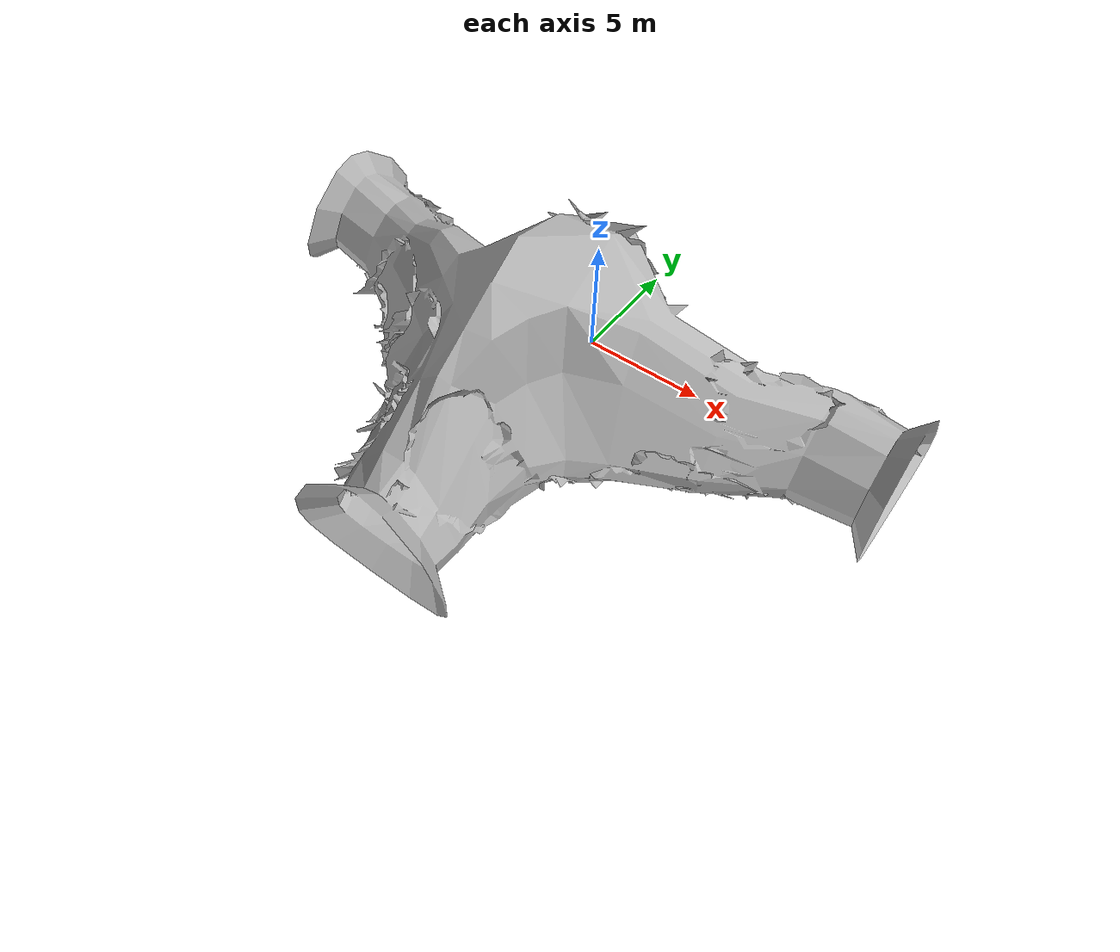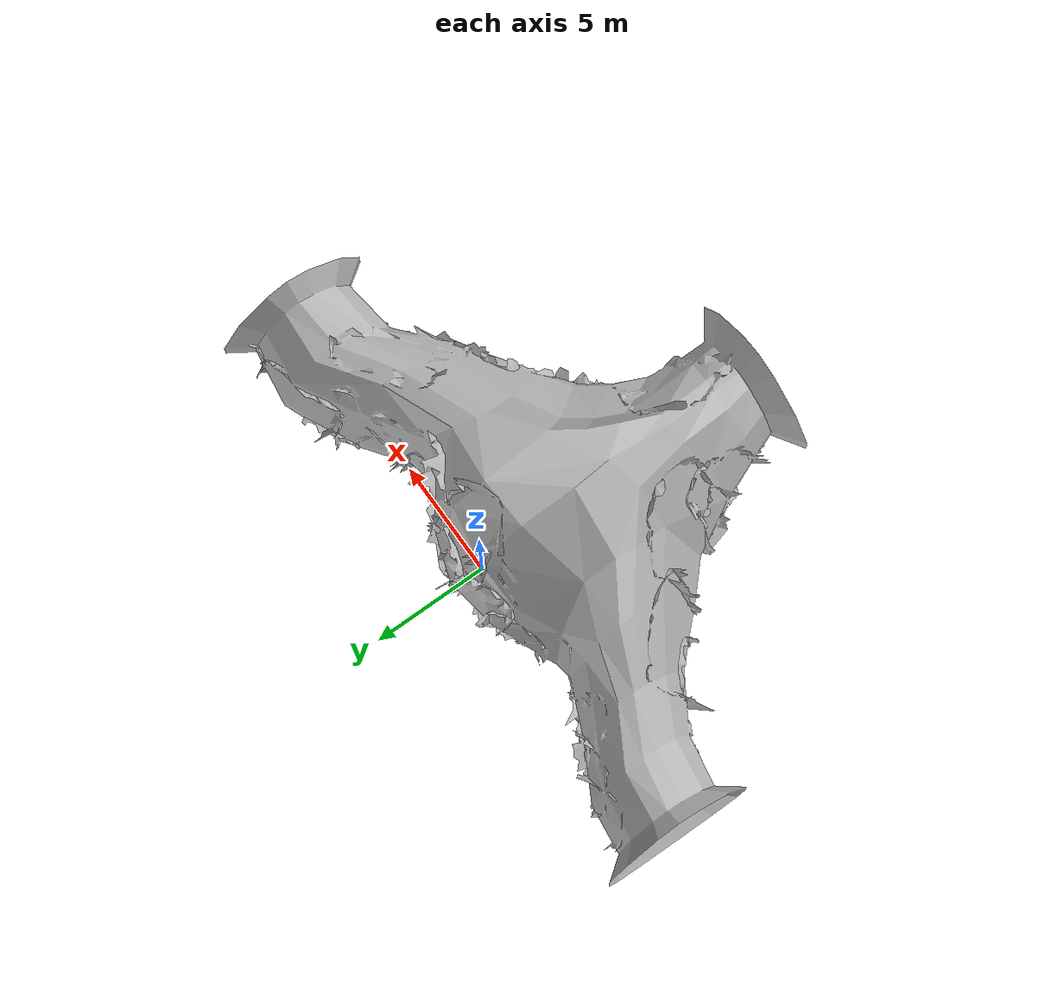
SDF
<?xml version="1.0"?>
<sdf version="1.6">
 <model name="Cave 3 Way">
   <pose>0 0 0 0 0 0</pose>
   <static>true</static>
   <link name="link">
     <collision name="collision">
       <geometry>
         <mesh>
          <uri>model://Cave 3 Way/meshes/cave_3way.dae</uri>
        </mesh>
       </geometry>
     </collision>
     <visual name="visual">
       <geometry>
         <mesh>
          <uri>model://Cave 3 Way/meshes/cave_3way.dae</uri>
        </mesh>
       </geometry>
     </visual>
   </link>
 </model>
</sdf>
